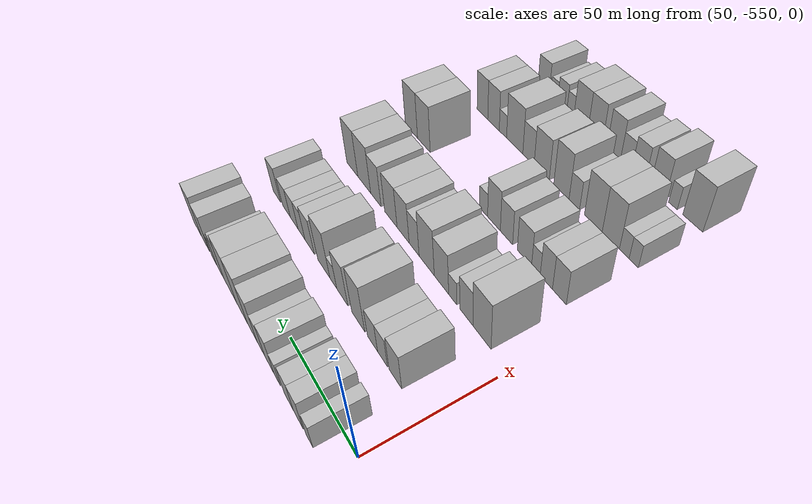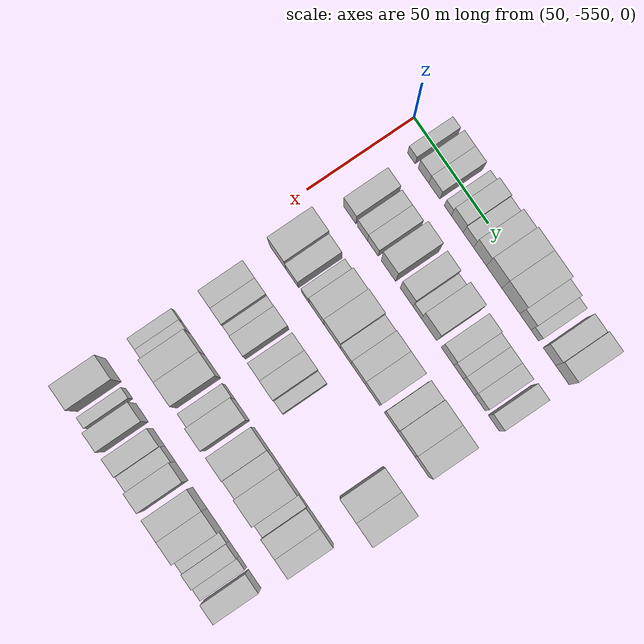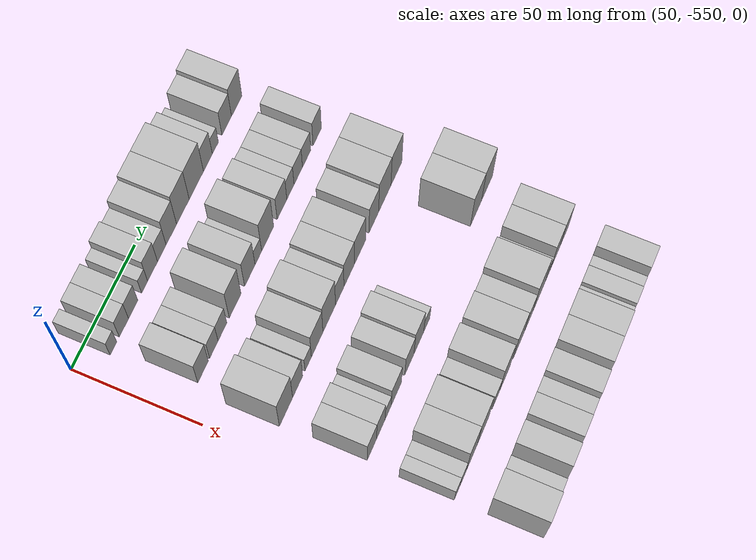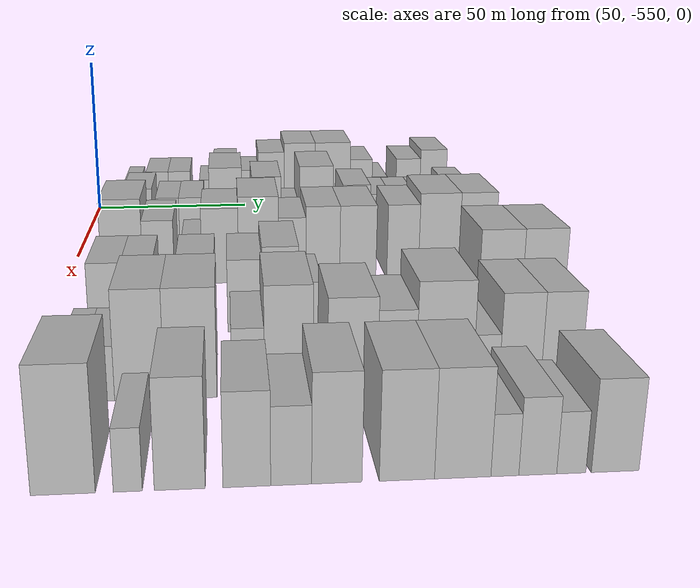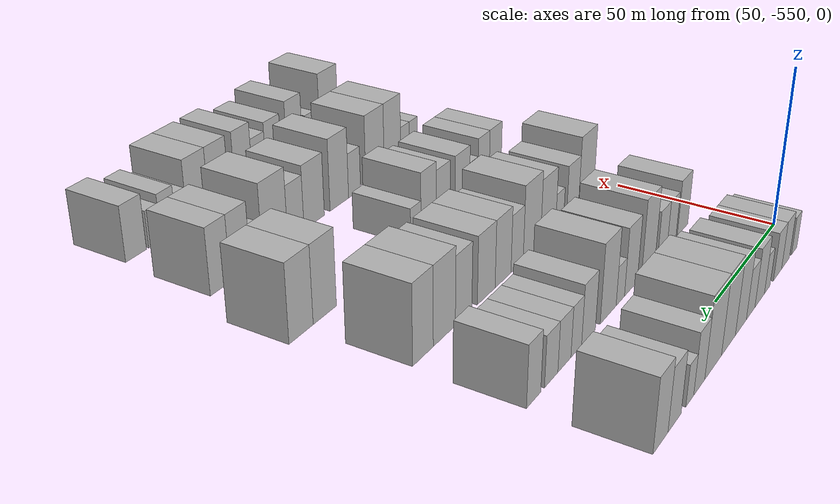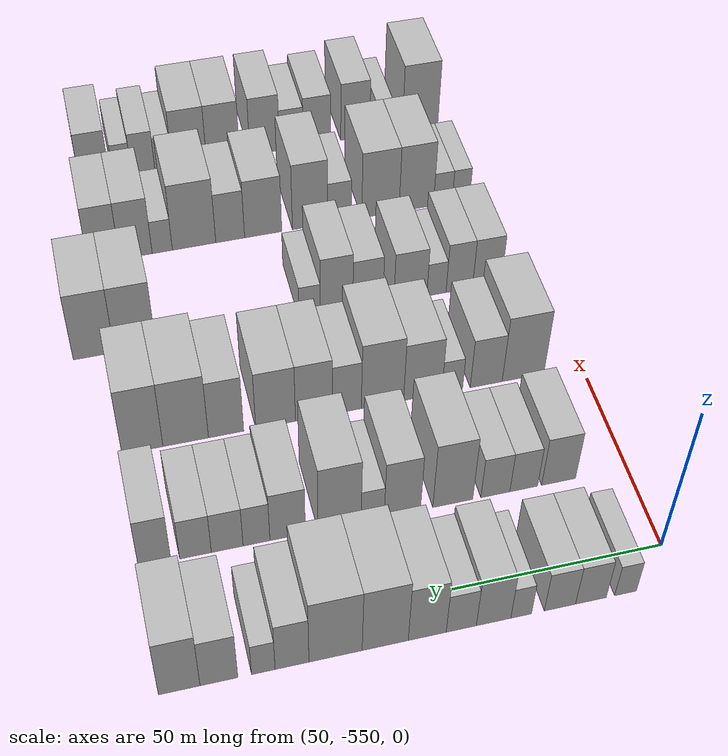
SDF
<sdf version="1.6">
 <world name="default">
  <model name="building_1">
   <static>1</static>
   <pose>50.0000 -537.4246 0 0.000000 0.000000 0.000000</pose>
   <link name="link">
    <pose>0 0 6.00 0 0 0</pose>
    <collision name="collision"><geometry><box><size>20.0000 5.1508 12.0000</size></box></geometry></collision>
    <visual name="visual">
     <cast_shadows>0</cast_shadows>
     <geometry><box><size>20.0000 5.1508 12.0000</size></box></geometry>
     <material>
      <script>
       <uri>model://HANNAS_wall/materials/scripts</uri>
       <uri>model://HANNAS_wall/materials/textures</uri>
       <name>vrc/HANNAS_wall</name>
      </script>
     </material>
    </visual>
   </link>
  </model>
  <model name="building_2">
   <static>1</static>
   <pose>50.0000 -529.2196 0 0.000000 0.000000 0.000000</pose>
   <link name="link">
    <pose>0 0 7.50 0 0 0</pose>
    <collision name="collision"><geometry><box><size>20.0000 7.2592 15.0000</size></box></geometry></collision>
    <visual name="visual">
     <cast_shadows>0</cast_shadows>
     <geometry><box><size>20.0000 7.2592 15.0000</size></box></geometry>
     <material>
      <script>
       <uri>model://HANNAS_wall/materials/scripts</uri>
       <uri>model://HANNAS_wall/materials/textures</uri>
       <name>vrc/HANNAS_wall</name>
      </script>
     </material>
    </visual>
   </link>
  </model>
  <model name="building_3">
   <static>1</static>
   <pose>50.0000 -521.9338 0 0.000000 0.000000 0.000000</pose>
   <link name="link">
    <pose>0 0 7.50 0 0 0</pose>
    <collision name="collision"><geometry><box><size>20.0000 7.3124 15.0000</size></box></geometry></collision>
    <visual name="visual">
     <cast_shadows>0</cast_shadows>
     <geometry><box><size>20.0000 7.3124 15.0000</size></box></geometry>
     <material>
      <script>
       <uri>model://HANNAS_wall/materials/scripts</uri>
       <uri>model://HANNAS_wall/materials/textures</uri>
       <name>vrc/HANNAS_wall</name>
      </script>
     </material>
    </visual>
   </link>
  </model>
  <model name="building_4">
   <static>1</static>
   <pose>50.0000 -512.8736 0 0.000000 0.000000 0.000000</pose>
   <link name="link">
    <pose>0 0 6.00 0 0 0</pose>
    <collision name="collision"><geometry><box><size>20.0000 4.8080 12.0000</size></box></geometry></collision>
    <visual name="visual">
     <cast_shadows>0</cast_shadows>
     <geometry><box><size>20.0000 4.8080 12.0000</size></box></geometry>
     <material>
      <script>
       <uri>model://HANNAS_wall/materials/scripts</uri>
       <uri>model://HANNAS_wall/materials/textures</uri>
       <name>vrc/HANNAS_wall</name>
      </script>
     </material>
    </visual>
   </link>
  </model>
  <model name="building_5">
   <static>1</static>
   <pose>50.0000 -506.4843 0 0.000000 0.000000 0.000000</pose>
   <link name="link">
    <pose>0 0 9.00 0 0 0</pose>
    <collision name="collision"><geometry><box><size>20.0000 7.9707 18.0000</size></box></geometry></collision>
    <visual name="visual">
     <cast_shadows>0</cast_shadows>
     <geometry><box><size>20.0000 7.9707 18.0000</size></box></geometry>
     <material>
      <script>
       <uri>model://HANNAS_wall/materials/scripts</uri>
       <uri>model://HANNAS_wall/materials/textures</uri>
       <name>vrc/HANNAS_wall</name>
      </script>
     </material>
    </visual>
   </link>
  </model>
  <model name="building_6">
   <static>1</static>
   <pose>50.0000 -499.0458 0 0.000000 0.000000 0.000000</pose>
   <link name="link">
    <pose>0 0 7.50 0 0 0</pose>
    <collision name="collision"><geometry><box><size>20.0000 6.9062 15.0000</size></box></geometry></collision>
    <visual name="visual">
     <cast_shadows>0</cast_shadows>
     <geometry><box><size>20.0000 6.9062 15.0000</size></box></geometry>
     <material>
      <script>
       <uri>model://HANNAS_wall/materials/scripts</uri>
       <uri>model://HANNAS_wall/materials/textures</uri>
       <name>vrc/HANNAS_wall</name>
      </script>
     </material>
    </visual>
   </link>
  </model>
  <model name="building_7">
   <static>1</static>
   <pose>50.0000 -491.2759 0 0.000000 0.000000 0.000000</pose>
   <link name="link">
    <pose>0 0 10.50 0 0 0</pose>
    <collision name="collision"><geometry><box><size>20.0000 8.6338 21.0000</size></box></geometry></collision>
    <visual name="visual">
     <cast_shadows>0</cast_shadows>
     <geometry><box><size>20.0000 8.6338 21.0000</size></box></geometry>
     <material>
      <script>
       <uri>model://HANNAS_wall/materials/scripts</uri>
       <uri>model://HANNAS_wall/materials/textures</uri>
       <name>vrc/HANNAS_wall</name>
      </script>
     </material>
    </visual>
   </link>
  </model>
  <model name="building_8">
   <static>1</static>
   <pose>50.0000 -481.7563 0 0.000000 0.000000 0.000000</pose>
   <link name="link">
    <pose>0 0 12.00 0 0 0</pose>
    <collision name="collision"><geometry><box><size>20.0000 10.4053 24.0000</size></box></geometry></collision>
    <visual name="visual">
     <cast_shadows>0</cast_shadows>
     <geometry><box><size>20.0000 10.4053 24.0000</size></box></geometry>
     <material>
      <script>
       <uri>model://HANNAS_wall/materials/scripts</uri>
       <uri>model://HANNAS_wall/materials/textures</uri>
       <name>vrc/HANNAS_wall</name>
      </script>
     </material>
    </visual>
   </link>
  </model>
  <model name="building_9">
   <static>1</static>
   <pose>50.0000 -470.6066 0 0.000000 0.000000 0.000000</pose>
   <link name="link">
    <pose>0 0 12.00 0 0 0</pose>
    <collision name="collision"><geometry><box><size>20.0000 11.8942 24.0000</size></box></geometry></collision>
    <visual name="visual">
     <cast_shadows>0</cast_shadows>
     <geometry><box><size>20.0000 11.8942 24.0000</size></box></geometry>
     <material>
      <script>
       <uri>model://HANNAS_wall/materials/scripts</uri>
       <uri>model://HANNAS_wall/materials/textures</uri>
       <name>vrc/HANNAS_wall</name>
      </script>
     </material>
    </visual>
   </link>
  </model>
  <model name="building_10">
   <static>1</static>
   <pose>50.0000 -460.9198 0 0.000000 0.000000 0.000000</pose>
   <link name="link">
    <pose>0 0 9.00 0 0 0</pose>
    <collision name="collision"><geometry><box><size>20.0000 7.4793 18.0000</size></box></geometry></collision>
    <visual name="visual">
     <cast_shadows>0</cast_shadows>
     <geometry><box><size>20.0000 7.4793 18.0000</size></box></geometry>
     <material>
      <script>
       <uri>model://HANNAS_wall/materials/scripts</uri>
       <uri>model://HANNAS_wall/materials/textures</uri>
       <name>vrc/HANNAS_wall</name>
      </script>
     </material>
    </visual>
   </link>
  </model>
  <model name="building_11">
   <static>1</static>
   <pose>50.0000 -454.5896 0 0.000000 0.000000 0.000000</pose>
   <link name="link">
    <pose>0 0 6.00 0 0 0</pose>
    <collision name="collision"><geometry><box><size>20.0000 5.1811 12.0000</size></box></geometry></collision>
    <visual name="visual">
     <cast_shadows>0</cast_shadows>
     <geometry><box><size>20.0000 5.1811 12.0000</size></box></geometry>
     <material>
      <script>
       <uri>model://HANNAS_wall/materials/scripts</uri>
       <uri>model://HANNAS_wall/materials/textures</uri>
       <name>vrc/HANNAS_wall</name>
      </script>
     </material>
    </visual>
   </link>
  </model>
  <model name="building_12">
   <static>1</static>
   <pose>50.0000 -444.8805 0 0.000000 0.000000 0.000000</pose>
   <link name="link">
    <pose>0 0 9.00 0 0 0</pose>
    <collision name="collision"><geometry><box><size>20.0000 8.2372 18.0000</size></box></geometry></collision>
    <visual name="visual">
     <cast_shadows>0</cast_shadows>
     <geometry><box><size>20.0000 8.2372 18.0000</size></box></geometry>
     <material>
      <script>
       <uri>model://HANNAS_wall/materials/scripts</uri>
       <uri>model://HANNAS_wall/materials/textures</uri>
       <name>vrc/HANNAS_wall</name>
      </script>
     </material>
    </visual>
   </link>
  </model>
  <model name="building_13">
   <static>1</static>
   <pose>50.0000 -436.2609 0 0.000000 0.000000 0.000000</pose>
   <link name="link">
    <pose>0 0 10.50 0 0 0</pose>
    <collision name="collision"><geometry><box><size>20.0000 9.0019 21.0000</size></box></geometry></collision>
    <visual name="visual">
     <cast_shadows>0</cast_shadows>
     <geometry><box><size>20.0000 9.0019 21.0000</size></box></geometry>
     <material>
      <script>
       <uri>model://HANNAS_wall/materials/scripts</uri>
       <uri>model://HANNAS_wall/materials/textures</uri>
       <name>vrc/HANNAS_wall</name>
      </script>
     </material>
    </visual>
   </link>
  </model>
  <model name="building_120">
   <static>1</static>
   <pose>82.0000 -532.7680 0 0.000000 0.000000 0.000000</pose>
   <link name="link">
    <pose>0 0 9.00 0 0 0</pose>
    <collision name="collision"><geometry><box><size>20.0000 8.4641 18.0000</size></box></geometry></collision>
    <visual name="visual">
     <cast_shadows>0</cast_shadows>
     <geometry><box><size>20.0000 8.4641 18.0000</size></box></geometry>
     <material>
      <script>
       <uri>model://HANNAS_wall/materials/scripts</uri>
       <uri>model://HANNAS_wall/materials/textures</uri>
       <name>vrc/HANNAS_wall</name>
      </script>
     </material>
    </visual>
   </link>
  </model>
  <model name="building_121">
   <static>1</static>
   <pose>82.0000 -524.0955 0 0.000000 0.000000 0.000000</pose>
   <link name="link">
    <pose>0 0 7.50 0 0 0</pose>
    <collision name="collision"><geometry><box><size>20.0000 6.8808 15.0000</size></box></geometry></collision>
    <visual name="visual">
     <cast_shadows>0</cast_shadows>
     <geometry><box><size>20.0000 6.8808 15.0000</size></box></geometry>
     <material>
      <script>
       <uri>model://HANNAS_wall/materials/scripts</uri>
       <uri>model://HANNAS_wall/materials/textures</uri>
       <name>vrc/HANNAS_wall</name>
      </script>
     </material>
    </visual>
   </link>
  </model>
  <model name="building_122">
   <static>1</static>
   <pose>82.0000 -517.0714 0 0.000000 0.000000 0.000000</pose>
   <link name="link">
    <pose>0 0 7.50 0 0 0</pose>
    <collision name="collision"><geometry><box><size>20.0000 7.1675 15.0000</size></box></geometry></collision>
    <visual name="visual">
     <cast_shadows>0</cast_shadows>
     <geometry><box><size>20.0000 7.1675 15.0000</size></box></geometry>
     <material>
      <script>
       <uri>model://HANNAS_wall/materials/scripts</uri>
       <uri>model://HANNAS_wall/materials/textures</uri>
       <name>vrc/HANNAS_wall</name>
      </script>
     </material>
    </visual>
   </link>
  </model>
  <model name="building_123">
   <static>1</static>
   <pose>82.0000 -506.6063 0 0.000000 0.000000 0.000000</pose>
   <link name="link">
    <pose>0 0 12.00 0 0 0</pose>
    <collision name="collision"><geometry><box><size>20.0000 9.7627 24.0000</size></box></geometry></collision>
    <visual name="visual">
     <cast_shadows>0</cast_shadows>
     <geometry><box><size>20.0000 9.7627 24.0000</size></box></geometry>
     <material>
      <script>
       <uri>model://HANNAS_wall/materials/scripts</uri>
       <uri>model://HANNAS_wall/materials/textures</uri>
       <name>vrc/HANNAS_wall</name>
      </script>
     </material>
    </visual>
   </link>
  </model>
  <model name="building_124">
   <static>1</static>
   <pose>82.0000 -494.3388 0 0.000000 0.000000 0.000000</pose>
   <link name="link">
    <pose>0 0 10.50 0 0 0</pose>
    <collision name="collision"><geometry><box><size>20.0000 8.7723 21.0000</size></box></geometry></collision>
    <visual name="visual">
     <cast_shadows>0</cast_shadows>
     <geometry><box><size>20.0000 8.7723 21.0000</size></box></geometry>
     <material>
      <script>
       <uri>model://HANNAS_wall/materials/scripts</uri>
       <uri>model://HANNAS_wall/materials/textures</uri>
       <name>vrc/HANNAS_wall</name>
      </script>
     </material>
    </visual>
   </link>
  </model>
  <model name="building_125">
   <static>1</static>
   <pose>82.0000 -487.1662 0 0.000000 0.000000 0.000000</pose>
   <link name="link">
    <pose>0 0 6.00 0 0 0</pose>
    <collision name="collision"><geometry><box><size>20.0000 5.5731 12.0000</size></box></geometry></collision>
    <visual name="visual">
     <cast_shadows>0</cast_shadows>
     <geometry><box><size>20.0000 5.5731 12.0000</size></box></geometry>
     <material>
      <script>
       <uri>model://HANNAS_wall/materials/scripts</uri>
       <uri>model://HANNAS_wall/materials/textures</uri>
       <name>vrc/HANNAS_wall</name>
      </script>
     </material>
    </visual>
   </link>
  </model>
  <model name="building_126">
   <static>1</static>
   <pose>82.0000 -479.2567 0 0.000000 0.000000 0.000000</pose>
   <link name="link">
    <pose>0 0 12.00 0 0 0</pose>
    <collision name="collision"><geometry><box><size>20.0000 10.2459 24.0000</size></box></geometry></collision>
    <visual name="visual">
     <cast_shadows>0</cast_shadows>
     <geometry><box><size>20.0000 10.2459 24.0000</size></box></geometry>
     <material>
      <script>
       <uri>model://HANNAS_wall/materials/scripts</uri>
       <uri>model://HANNAS_wall/materials/textures</uri>
       <name>vrc/HANNAS_wall</name>
      </script>
     </material>
    </visual>
   </link>
  </model>
  <model name="building_127">
   <static>1</static>
   <pose>82.0000 -466.9516 0 0.000000 0.000000 0.000000</pose>
   <link name="link">
    <pose>0 0 9.00 0 0 0</pose>
    <collision name="collision"><geometry><box><size>20.0000 8.3643 18.0000</size></box></geometry></collision>
    <visual name="visual">
     <cast_shadows>0</cast_shadows>
     <geometry><box><size>20.0000 8.3643 18.0000</size></box></geometry>
     <material>
      <script>
       <uri>model://HANNAS_wall/materials/scripts</uri>
       <uri>model://HANNAS_wall/materials/textures</uri>
       <name>vrc/HANNAS_wall</name>
      </script>
     </material>
    </visual>
   </link>
  </model>
  <model name="building_128">
   <static>1</static>
   <pose>82.0000 -459.6351 0 0.000000 0.000000 0.000000</pose>
   <link name="link">
    <pose>0 0 7.50 0 0 0</pose>
    <collision name="collision"><geometry><box><size>20.0000 6.2687 15.0000</size></box></geometry></collision>
    <visual name="visual">
     <cast_shadows>0</cast_shadows>
     <geometry><box><size>20.0000 6.2687 15.0000</size></box></geometry>
     <material>
      <script>
       <uri>model://HANNAS_wall/materials/scripts</uri>
       <uri>model://HANNAS_wall/materials/textures</uri>
       <name>vrc/HANNAS_wall</name>
      </script>
     </material>
    </visual>
   </link>
  </model>
  <model name="building_129">
   <static>1</static>
   <pose>82.0000 -452.7961 0 0.000000 0.000000 0.000000</pose>
   <link name="link">
    <pose>0 0 7.50 0 0 0</pose>
    <collision name="collision"><geometry><box><size>20.0000 7.4093 15.0000</size></box></geometry></collision>
    <visual name="visual">
     <cast_shadows>0</cast_shadows>
     <geometry><box><size>20.0000 7.4093 15.0000</size></box></geometry>
     <material>
      <script>
       <uri>model://HANNAS_wall/materials/scripts</uri>
       <uri>model://HANNAS_wall/materials/textures</uri>
       <name>vrc/HANNAS_wall</name>
      </script>
     </material>
    </visual>
   </link>
  </model>
  <model name="building_130">
   <static>1</static>
   <pose>82.0000 -445.4182 0 0.000000 0.000000 0.000000</pose>
   <link name="link">
    <pose>0 0 7.50 0 0 0</pose>
    <collision name="collision"><geometry><box><size>20.0000 7.3465 15.0000</size></box></geometry></collision>
    <visual name="visual">
     <cast_shadows>0</cast_shadows>
     <geometry><box><size>20.0000 7.3465 15.0000</size></box></geometry>
     <material>
      <script>
       <uri>model://HANNAS_wall/materials/scripts</uri>
       <uri>model://HANNAS_wall/materials/textures</uri>
       <name>vrc/HANNAS_wall</name>
      </script>
     </material>
    </visual>
   </link>
  </model>
  <model name="building_131">
   <static>1</static>
   <pose>82.0000 -436.0013 0 0.000000 0.000000 0.000000</pose>
   <link name="link">
    <pose>0 0 9.00 0 0 0</pose>
    <collision name="collision"><geometry><box><size>20.0000 7.4872 18.0000</size></box></geometry></collision>
    <visual name="visual">
     <cast_shadows>0</cast_shadows>
     <geometry><box><size>20.0000 7.4872 18.0000</size></box></geometry>
     <material>
      <script>
       <uri>model://HANNAS_wall/materials/scripts</uri>
       <uri>model://HANNAS_wall/materials/textures</uri>
       <name>vrc/HANNAS_wall</name>
      </script>
     </material>
    </visual>
   </link>
  </model>
  <model name="building_237">
   <static>1</static>
   <pose>114.0000 -534.5068 0 0.000000 0.000000 0.000000</pose>
   <link name="link">
    <pose>0 0 12.00 0 0 0</pose>
    <collision name="collision"><geometry><box><size>20.0000 10.9864 24.0000</size></box></geometry></collision>
    <visual name="visual">
     <cast_shadows>0</cast_shadows>
     <geometry><box><size>20.0000 10.9864 24.0000</size></box></geometry>
     <material>
      <script>
       <uri>model://HANNAS_wall/materials/scripts</uri>
       <uri>model://HANNAS_wall/materials/textures</uri>
       <name>vrc/HANNAS_wall</name>
      </script>
     </material>
    </visual>
   </link>
  </model>
  <model name="building_238">
   <static>1</static>
   <pose>114.0000 -524.8263 0 0.000000 0.000000 0.000000</pose>
   <link name="link">
    <pose>0 0 9.00 0 0 0</pose>
    <collision name="collision"><geometry><box><size>20.0000 8.3745 18.0000</size></box></geometry></collision>
    <visual name="visual">
     <cast_shadows>0</cast_shadows>
     <geometry><box><size>20.0000 8.3745 18.0000</size></box></geometry>
     <material>
      <script>
       <uri>model://HANNAS_wall/materials/scripts</uri>
       <uri>model://HANNAS_wall/materials/textures</uri>
       <name>vrc/HANNAS_wall</name>
      </script>
     </material>
    </visual>
   </link>
  </model>
  <model name="building_239">
   <static>1</static>
   <pose>114.0000 -515.9416 0 0.000000 0.000000 0.000000</pose>
   <link name="link">
    <pose>0 0 6.00 0 0 0</pose>
    <collision name="collision"><geometry><box><size>20.0000 5.3950 12.0000</size></box></geometry></collision>
    <visual name="visual">
     <cast_shadows>0</cast_shadows>
     <geometry><box><size>20.0000 5.3950 12.0000</size></box></geometry>
     <material>
      <script>
       <uri>model://HANNAS_wall/materials/scripts</uri>
       <uri>model://HANNAS_wall/materials/textures</uri>
       <name>vrc/HANNAS_wall</name>
      </script>
     </material>
    </visual>
   </link>
  </model>
  <model name="building_240">
   <static>1</static>
   <pose>114.0000 -508.3169 0 0.000000 0.000000 0.000000</pose>
   <link name="link">
    <pose>0 0 10.50 0 0 0</pose>
    <collision name="collision"><geometry><box><size>20.0000 9.8543 21.0000</size></box></geometry></collision>
    <visual name="visual">
     <cast_shadows>0</cast_shadows>
     <geometry><box><size>20.0000 9.8543 21.0000</size></box></geometry>
     <material>
      <script>
       <uri>model://HANNAS_wall/materials/scripts</uri>
       <uri>model://HANNAS_wall/materials/textures</uri>
       <name>vrc/HANNAS_wall</name>
      </script>
     </material>
    </visual>
   </link>
  </model>
  <model name="building_241">
   <static>1</static>
   <pose>114.0000 -497.9650 0 0.000000 0.000000 0.000000</pose>
   <link name="link">
    <pose>0 0 12.00 0 0 0</pose>
    <collision name="collision"><geometry><box><size>20.0000 10.8495 24.0000</size></box></geometry></collision>
    <visual name="visual">
     <cast_shadows>0</cast_shadows>
     <geometry><box><size>20.0000 10.8495 24.0000</size></box></geometry>
     <material>
      <script>
       <uri>model://HANNAS_wall/materials/scripts</uri>
       <uri>model://HANNAS_wall/materials/textures</uri>
       <name>vrc/HANNAS_wall</name>
      </script>
     </material>
    </visual>
   </link>
  </model>
  <model name="building_242">
   <static>1</static>
   <pose>114.0000 -488.8527 0 0.000000 0.000000 0.000000</pose>
   <link name="link">
    <pose>0 0 9.00 0 0 0</pose>
    <collision name="collision"><geometry><box><size>20.0000 7.3752 18.0000</size></box></geometry></collision>
    <visual name="visual">
     <cast_shadows>0</cast_shadows>
     <geometry><box><size>20.0000 7.3752 18.0000</size></box></geometry>
     <material>
      <script>
       <uri>model://HANNAS_wall/materials/scripts</uri>
       <uri>model://HANNAS_wall/materials/textures</uri>
       <name>vrc/HANNAS_wall</name>
      </script>
     </material>
    </visual>
   </link>
  </model>
  <model name="building_243">
   <static>1</static>
   <pose>114.0000 -480.5340 0 0.000000 0.000000 0.000000</pose>
   <link name="link">
    <pose>0 0 10.50 0 0 0</pose>
    <collision name="collision"><geometry><box><size>20.0000 9.2622 21.0000</size></box></geometry></collision>
    <visual name="visual">
     <cast_shadows>0</cast_shadows>
     <geometry><box><size>20.0000 9.2622 21.0000</size></box></geometry>
     <material>
      <script>
       <uri>model://HANNAS_wall/materials/scripts</uri>
       <uri>model://HANNAS_wall/materials/textures</uri>
       <name>vrc/HANNAS_wall</name>
      </script>
     </material>
    </visual>
   </link>
  </model>
  <model name="building_244">
   <static>1</static>
   <pose>114.0000 -470.9319 0 0.000000 0.000000 0.000000</pose>
   <link name="link">
    <pose>0 0 10.50 0 0 0</pose>
    <collision name="collision"><geometry><box><size>20.0000 9.9419 21.0000</size></box></geometry></collision>
    <visual name="visual">
     <cast_shadows>0</cast_shadows>
     <geometry><box><size>20.0000 9.9419 21.0000</size></box></geometry>
     <material>
      <script>
       <uri>model://HANNAS_wall/materials/scripts</uri>
       <uri>model://HANNAS_wall/materials/textures</uri>
       <name>vrc/HANNAS_wall</name>
      </script>
     </material>
    </visual>
   </link>
  </model>
  <model name="building_245">
   <static>1</static>
   <pose>114.0000 -458.5997 0 0.000000 0.000000 0.000000</pose>
   <link name="link">
    <pose>0 0 10.50 0 0 0</pose>
    <collision name="collision"><geometry><box><size>20.0000 8.7226 21.0000</size></box></geometry></collision>
    <visual name="visual">
     <cast_shadows>0</cast_shadows>
     <geometry><box><size>20.0000 8.7226 21.0000</size></box></geometry>
     <material>
      <script>
       <uri>model://HANNAS_wall/materials/scripts</uri>
       <uri>model://HANNAS_wall/materials/textures</uri>
       <name>vrc/HANNAS_wall</name>
      </script>
     </material>
    </visual>
   </link>
  </model>
  <model name="building_246">
   <static>1</static>
   <pose>114.0000 -448.6491 0 0.000000 0.000000 0.000000</pose>
   <link name="link">
    <pose>0 0 12.00 0 0 0</pose>
    <collision name="collision"><geometry><box><size>20.0000 11.1785 24.0000</size></box></geometry></collision>
    <visual name="visual">
     <cast_shadows>0</cast_shadows>
     <geometry><box><size>20.0000 11.1785 24.0000</size></box></geometry>
     <material>
      <script>
       <uri>model://HANNAS_wall/materials/scripts</uri>
       <uri>model://HANNAS_wall/materials/textures</uri>
       <name>vrc/HANNAS_wall</name>
      </script>
     </material>
    </visual>
   </link>
  </model>
  <model name="building_247">
   <static>1</static>
   <pose>114.0000 -438.0584 0 0.000000 0.000000 0.000000</pose>
   <link name="link">
    <pose>0 0 12.00 0 0 0</pose>
    <collision name="collision"><geometry><box><size>20.0000 10.0029 24.0000</size></box></geometry></collision>
    <visual name="visual">
     <cast_shadows>0</cast_shadows>
     <geometry><box><size>20.0000 10.0029 24.0000</size></box></geometry>
     <material>
      <script>
       <uri>model://HANNAS_wall/materials/scripts</uri>
       <uri>model://HANNAS_wall/materials/textures</uri>
       <name>vrc/HANNAS_wall</name>
      </script>
     </material>
    </visual>
   </link>
  </model>
  <model name="building_345">
   <static>1</static>
   <pose>146.0000 -535.0195 0 0.000000 0.000000 0.000000</pose>
   <link name="link">
    <pose>0 0 9.00 0 0 0</pose>
    <collision name="collision"><geometry><box><size>20.0000 7.9610 18.0000</size></box></geometry></collision>
    <visual name="visual">
     <cast_shadows>0</cast_shadows>
     <geometry><box><size>20.0000 7.9610 18.0000</size></box></geometry>
     <material>
      <script>
       <uri>model://HANNAS_wall/materials/scripts</uri>
       <uri>model://HANNAS_wall/materials/textures</uri>
       <name>vrc/HANNAS_wall</name>
      </script>
     </material>
    </visual>
   </link>
  </model>
  <model name="building_346">
   <static>1</static>
   <pose>146.0000 -527.3900 0 0.000000 0.000000 0.000000</pose>
   <link name="link">
    <pose>0 0 9.00 0 0 0</pose>
    <collision name="collision"><geometry><box><size>20.0000 7.2980 18.0000</size></box></geometry></collision>
    <visual name="visual">
     <cast_shadows>0</cast_shadows>
     <geometry><box><size>20.0000 7.2980 18.0000</size></box></geometry>
     <material>
      <script>
       <uri>model://HANNAS_wall/materials/scripts</uri>
       <uri>model://HANNAS_wall/materials/textures</uri>
       <name>vrc/HANNAS_wall</name>
      </script>
     </material>
    </visual>
   </link>
  </model>
  <model name="building_347">
   <static>1</static>
   <pose>146.0000 -521.1068 0 0.000000 0.000000 0.000000</pose>
   <link name="link">
    <pose>0 0 6.00 0 0 0</pose>
    <collision name="collision"><geometry><box><size>20.0000 5.2684 12.0000</size></box></geometry></collision>
    <visual name="visual">
     <cast_shadows>0</cast_shadows>
     <geometry><box><size>20.0000 5.2684 12.0000</size></box></geometry>
     <material>
      <script>
       <uri>model://HANNAS_wall/materials/scripts</uri>
       <uri>model://HANNAS_wall/materials/textures</uri>
       <name>vrc/HANNAS_wall</name>
      </script>
     </material>
    </visual>
   </link>
  </model>
  <model name="building_348">
   <static>1</static>
   <pose>146.0000 -513.9784 0 0.000000 0.000000 0.000000</pose>
   <link name="link">
    <pose>0 0 9.00 0 0 0</pose>
    <collision name="collision"><geometry><box><size>20.0000 8.9884 18.0000</size></box></geometry></collision>
    <visual name="visual">
     <cast_shadows>0</cast_shadows>
     <geometry><box><size>20.0000 8.9884 18.0000</size></box></geometry>
     <material>
      <script>
       <uri>model://HANNAS_wall/materials/scripts</uri>
       <uri>model://HANNAS_wall/materials/textures</uri>
       <name>vrc/HANNAS_wall</name>
      </script>
     </material>
    </visual>
   </link>
  </model>
  <model name="building_349">
   <static>1</static>
   <pose>146.0000 -502.4098 0 0.000000 0.000000 0.000000</pose>
   <link name="link">
    <pose>0 0 9.00 0 0 0</pose>
    <collision name="collision"><geometry><box><size>20.0000 8.1488 18.0000</size></box></geometry></collision>
    <visual name="visual">
     <cast_shadows>0</cast_shadows>
     <geometry><box><size>20.0000 8.1488 18.0000</size></box></geometry>
     <material>
      <script>
       <uri>model://HANNAS_wall/materials/scripts</uri>
       <uri>model://HANNAS_wall/materials/textures</uri>
       <name>vrc/HANNAS_wall</name>
      </script>
     </material>
    </visual>
   </link>
  </model>
  <model name="building_350">
   <static>1</static>
   <pose>146.0000 -493.9927 0 0.000000 0.000000 0.000000</pose>
   <link name="link">
    <pose>0 0 10.50 0 0 0</pose>
    <collision name="collision"><geometry><box><size>20.0000 8.6854 21.0000</size></box></geometry></collision>
    <visual name="visual">
     <cast_shadows>0</cast_shadows>
     <geometry><box><size>20.0000 8.6854 21.0000</size></box></geometry>
     <material>
      <script>
       <uri>model://HANNAS_wall/materials/scripts</uri>
       <uri>model://HANNAS_wall/materials/textures</uri>
       <name>vrc/HANNAS_wall</name>
      </script>
     </material>
    </visual>
   </link>
  </model>
  <model name="building_351">
   <static>1</static>
   <pose>146.0000 -486.8085 0 0.000000 0.000000 0.000000</pose>
   <link name="link">
    <pose>0 0 6.00 0 0 0</pose>
    <collision name="collision"><geometry><box><size>20.0000 5.6830 12.0000</size></box></geometry></collision>
    <visual name="visual">
     <cast_shadows>0</cast_shadows>
     <geometry><box><size>20.0000 5.6830 12.0000</size></box></geometry>
     <material>
      <script>
       <uri>model://HANNAS_wall/materials/scripts</uri>
       <uri>model://HANNAS_wall/materials/textures</uri>
       <name>vrc/HANNAS_wall</name>
      </script>
     </material>
    </visual>
   </link>
  </model>
  <model name="building_352">
   <static>1</static>
   <pose>146.0000 -441.0536 0 0.000000 0.000000 0.000000</pose>
   <link name="link">
    <pose>0 0 12.00 0 0 0</pose>
    <collision name="collision"><geometry><box><size>20.0000 10.6090 24.0000</size></box></geometry></collision>
    <visual name="visual">
     <cast_shadows>0</cast_shadows>
     <geometry><box><size>20.0000 10.6090 24.0000</size></box></geometry>
     <material>
      <script>
       <uri>model://HANNAS_wall/materials/scripts</uri>
       <uri>model://HANNAS_wall/materials/textures</uri>
       <name>vrc/HANNAS_wall</name>
      </script>
     </material>
    </visual>
   </link>
  </model>
  <model name="building_353">
   <static>1</static>
   <pose>146.0000 -430.4767 0 0.000000 0.000000 0.000000</pose>
   <link name="link">
    <pose>0 0 12.00 0 0 0</pose>
    <collision name="collision"><geometry><box><size>20.0000 10.5447 24.0000</size></box></geometry></collision>
    <visual name="visual">
     <cast_shadows>0</cast_shadows>
     <geometry><box><size>20.0000 10.5447 24.0000</size></box></geometry>
     <material>
      <script>
       <uri>model://HANNAS_wall/materials/scripts</uri>
       <uri>model://HANNAS_wall/materials/textures</uri>
       <name>vrc/HANNAS_wall</name>
      </script>
     </material>
    </visual>
   </link>
  </model>
  <model name="building_454">
   <static>1</static>
   <pose>178.0000 -537.4668 0 0.000000 0.000000 0.000000</pose>
   <link name="link">
    <pose>0 0 6.00 0 0 0</pose>
    <collision name="collision"><geometry><box><size>20.0000 5.0663 12.0000</size></box></geometry></collision>
    <visual name="visual">
     <cast_shadows>0</cast_shadows>
     <geometry><box><size>20.0000 5.0663 12.0000</size></box></geometry>
     <material>
      <script>
       <uri>model://HANNAS_wall/materials/scripts</uri>
       <uri>model://HANNAS_wall/materials/textures</uri>
       <name>vrc/HANNAS_wall</name>
      </script>
     </material>
    </visual>
   </link>
  </model>
  <model name="building_455">
   <static>1</static>
   <pose>178.0000 -532.2196 0 0.000000 0.000000 0.000000</pose>
   <link name="link">
    <pose>0 0 6.00 0 0 0</pose>
    <collision name="collision"><geometry><box><size>20.0000 5.4281 12.0000</size></box></geometry></collision>
    <visual name="visual">
     <cast_shadows>0</cast_shadows>
     <geometry><box><size>20.0000 5.4281 12.0000</size></box></geometry>
     <material>
      <script>
       <uri>model://HANNAS_wall/materials/scripts</uri>
       <uri>model://HANNAS_wall/materials/textures</uri>
       <name>vrc/HANNAS_wall</name>
      </script>
     </material>
    </visual>
   </link>
  </model>
  <model name="building_456">
   <static>1</static>
   <pose>178.0000 -524.5306 0 0.000000 0.000000 0.000000</pose>
   <link name="link">
    <pose>0 0 12.00 0 0 0</pose>
    <collision name="collision"><geometry><box><size>20.0000 9.9499 24.0000</size></box></geometry></collision>
    <visual name="visual">
     <cast_shadows>0</cast_shadows>
     <geometry><box><size>20.0000 9.9499 24.0000</size></box></geometry>
     <material>
      <script>
       <uri>model://HANNAS_wall/materials/scripts</uri>
       <uri>model://HANNAS_wall/materials/textures</uri>
       <name>vrc/HANNAS_wall</name>
      </script>
     </material>
    </visual>
   </link>
  </model>
  <model name="building_457">
   <static>1</static>
   <pose>178.0000 -514.2088 0 0.000000 0.000000 0.000000</pose>
   <link name="link">
    <pose>0 0 12.00 0 0 0</pose>
    <collision name="collision"><geometry><box><size>20.0000 10.6936 24.0000</size></box></geometry></collision>
    <visual name="visual">
     <cast_shadows>0</cast_shadows>
     <geometry><box><size>20.0000 10.6936 24.0000</size></box></geometry>
     <material>
      <script>
       <uri>model://HANNAS_wall/materials/scripts</uri>
       <uri>model://HANNAS_wall/materials/textures</uri>
       <name>vrc/HANNAS_wall</name>
      </script>
     </material>
    </visual>
   </link>
  </model>
  <model name="building_458">
   <static>1</static>
   <pose>178.0000 -502.5401 0 0.000000 0.000000 0.000000</pose>
   <link name="link">
    <pose>0 0 7.50 0 0 0</pose>
    <collision name="collision"><geometry><box><size>20.0000 6.6438 15.0000</size></box></geometry></collision>
    <visual name="visual">
     <cast_shadows>0</cast_shadows>
     <geometry><box><size>20.0000 6.6438 15.0000</size></box></geometry>
     <material>
      <script>
       <uri>model://HANNAS_wall/materials/scripts</uri>
       <uri>model://HANNAS_wall/materials/textures</uri>
       <name>vrc/HANNAS_wall</name>
      </script>
     </material>
    </visual>
   </link>
  </model>
  <model name="building_459">
   <static>1</static>
   <pose>178.0000 -494.2383 0 0.000000 0.000000 0.000000</pose>
   <link name="link">
    <pose>0 0 12.00 0 0 0</pose>
    <collision name="collision"><geometry><box><size>20.0000 9.9599 24.0000</size></box></geometry></collision>
    <visual name="visual">
     <cast_shadows>0</cast_shadows>
     <geometry><box><size>20.0000 9.9599 24.0000</size></box></geometry>
     <material>
      <script>
       <uri>model://HANNAS_wall/materials/scripts</uri>
       <uri>model://HANNAS_wall/materials/textures</uri>
       <name>vrc/HANNAS_wall</name>
      </script>
     </material>
    </visual>
   </link>
  </model>
  <model name="building_460">
   <static>1</static>
   <pose>178.0000 -481.0750 0 0.000000 0.000000 0.000000</pose>
   <link name="link">
    <pose>0 0 10.50 0 0 0</pose>
    <collision name="collision"><geometry><box><size>20.0000 10.3667 21.0000</size></box></geometry></collision>
    <visual name="visual">
     <cast_shadows>0</cast_shadows>
     <geometry><box><size>20.0000 10.3667 21.0000</size></box></geometry>
     <material>
      <script>
       <uri>model://HANNAS_wall/materials/scripts</uri>
       <uri>model://HANNAS_wall/materials/textures</uri>
       <name>vrc/HANNAS_wall</name>
      </script>
     </material>
    </visual>
   </link>
  </model>
  <model name="building_461">
   <static>1</static>
   <pose>178.0000 -471.8965 0 0.000000 0.000000 0.000000</pose>
   <link name="link">
    <pose>0 0 9.00 0 0 0</pose>
    <collision name="collision"><geometry><box><size>20.0000 7.9904 18.0000</size></box></geometry></collision>
    <visual name="visual">
     <cast_shadows>0</cast_shadows>
     <geometry><box><size>20.0000 7.9904 18.0000</size></box></geometry>
     <material>
      <script>
       <uri>model://HANNAS_wall/materials/scripts</uri>
       <uri>model://HANNAS_wall/materials/textures</uri>
       <name>vrc/HANNAS_wall</name>
      </script>
     </material>
    </visual>
   </link>
  </model>
  <model name="building_462">
   <static>1</static>
   <pose>178.0000 -461.9274 0 0.000000 0.000000 0.000000</pose>
   <link name="link">
    <pose>0 0 12.00 0 0 0</pose>
    <collision name="collision"><geometry><box><size>20.0000 11.9478 24.0000</size></box></geometry></collision>
    <visual name="visual">
     <cast_shadows>0</cast_shadows>
     <geometry><box><size>20.0000 11.9478 24.0000</size></box></geometry>
     <material>
      <script>
       <uri>model://HANNAS_wall/materials/scripts</uri>
       <uri>model://HANNAS_wall/materials/textures</uri>
       <name>vrc/HANNAS_wall</name>
      </script>
     </material>
    </visual>
   </link>
  </model>
  <model name="building_463">
   <static>1</static>
   <pose>178.0000 -453.1906 0 0.000000 0.000000 0.000000</pose>
   <link name="link">
    <pose>0 0 6.00 0 0 0</pose>
    <collision name="collision"><geometry><box><size>20.0000 5.5258 12.0000</size></box></geometry></collision>
    <visual name="visual">
     <cast_shadows>0</cast_shadows>
     <geometry><box><size>20.0000 5.5258 12.0000</size></box></geometry>
     <material>
      <script>
       <uri>model://HANNAS_wall/materials/scripts</uri>
       <uri>model://HANNAS_wall/materials/textures</uri>
       <name>vrc/HANNAS_wall</name>
      </script>
     </material>
    </visual>
   </link>
  </model>
  <model name="building_464">
   <static>1</static>
   <pose>178.0000 -445.9883 0 0.000000 0.000000 0.000000</pose>
   <link name="link">
    <pose>0 0 10.50 0 0 0</pose>
    <collision name="collision"><geometry><box><size>20.0000 8.8787 21.0000</size></box></geometry></collision>
    <visual name="visual">
     <cast_shadows>0</cast_shadows>
     <geometry><box><size>20.0000 8.8787 21.0000</size></box></geometry>
     <material>
      <script>
       <uri>model://HANNAS_wall/materials/scripts</uri>
       <uri>model://HANNAS_wall/materials/textures</uri>
       <name>vrc/HANNAS_wall</name>
      </script>
     </material>
    </visual>
   </link>
  </model>
  <model name="building_465">
   <static>1</static>
   <pose>178.0000 -437.2751 0 0.000000 0.000000 0.000000</pose>
   <link name="link">
    <pose>0 0 10.50 0 0 0</pose>
    <collision name="collision"><geometry><box><size>20.0000 8.5477 21.0000</size></box></geometry></collision>
    <visual name="visual">
     <cast_shadows>0</cast_shadows>
     <geometry><box><size>20.0000 8.5477 21.0000</size></box></geometry>
     <material>
      <script>
       <uri>model://HANNAS_wall/materials/scripts</uri>
       <uri>model://HANNAS_wall/materials/textures</uri>
       <name>vrc/HANNAS_wall</name>
      </script>
     </material>
    </visual>
   </link>
  </model>
  <model name="building_574">
   <static>1</static>
   <pose>210.0000 -534.5940 0 0.000000 0.000000 0.000000</pose>
   <link name="link">
    <pose>0 0 12.00 0 0 0</pose>
    <collision name="collision"><geometry><box><size>20.0000 10.8120 24.0000</size></box></geometry></collision>
    <visual name="visual">
     <cast_shadows>0</cast_shadows>
     <geometry><box><size>20.0000 10.8120 24.0000</size></box></geometry>
     <material>
      <script>
       <uri>model://HANNAS_wall/materials/scripts</uri>
       <uri>model://HANNAS_wall/materials/textures</uri>
       <name>vrc/HANNAS_wall</name>
      </script>
     </material>
    </visual>
   </link>
  </model>
  <model name="building_575">
   <static>1</static>
   <pose>210.0000 -523.7458 0 0.000000 0.000000 0.000000</pose>
   <link name="link">
    <pose>0 0 6.00 0 0 0</pose>
    <collision name="collision"><geometry><box><size>20.0000 4.8844 12.0000</size></box></geometry></collision>
    <visual name="visual">
     <cast_shadows>0</cast_shadows>
     <geometry><box><size>20.0000 4.8844 12.0000</size></box></geometry>
     <material>
      <script>
       <uri>model://HANNAS_wall/materials/scripts</uri>
       <uri>model://HANNAS_wall/materials/textures</uri>
       <name>vrc/HANNAS_wall</name>
      </script>
     </material>
    </visual>
   </link>
  </model>
  <model name="building_576">
   <static>1</static>
   <pose>210.0000 -514.9911 0 0.000000 0.000000 0.000000</pose>
   <link name="link">
    <pose>0 0 10.50 0 0 0</pose>
    <collision name="collision"><geometry><box><size>20.0000 8.6251 21.0000</size></box></geometry></collision>
    <visual name="visual">
     <cast_shadows>0</cast_shadows>
     <geometry><box><size>20.0000 8.6251 21.0000</size></box></geometry>
     <material>
      <script>
       <uri>model://HANNAS_wall/materials/scripts</uri>
       <uri>model://HANNAS_wall/materials/textures</uri>
       <name>vrc/HANNAS_wall</name>
      </script>
     </material>
    </visual>
   </link>
  </model>
  <model name="building_577">
   <static>1</static>
   <pose>210.0000 -503.5986 0 0.000000 0.000000 0.000000</pose>
   <link name="link">
    <pose>0 0 9.00 0 0 0</pose>
    <collision name="collision"><geometry><box><size>20.0000 8.1599 18.0000</size></box></geometry></collision>
    <visual name="visual">
     <cast_shadows>0</cast_shadows>
     <geometry><box><size>20.0000 8.1599 18.0000</size></box></geometry>
     <material>
      <script>
       <uri>model://HANNAS_wall/materials/scripts</uri>
       <uri>model://HANNAS_wall/materials/textures</uri>
       <name>vrc/HANNAS_wall</name>
      </script>
     </material>
    </visual>
   </link>
  </model>
  <model name="building_578">
   <static>1</static>
   <pose>210.0000 -496.0052 0 0.000000 0.000000 0.000000</pose>
   <link name="link">
    <pose>0 0 7.50 0 0 0</pose>
    <collision name="collision"><geometry><box><size>20.0000 7.0269 15.0000</size></box></geometry></collision>
    <visual name="visual">
     <cast_shadows>0</cast_shadows>
     <geometry><box><size>20.0000 7.0269 15.0000</size></box></geometry>
     <material>
      <script>
       <uri>model://HANNAS_wall/materials/scripts</uri>
       <uri>model://HANNAS_wall/materials/textures</uri>
       <name>vrc/HANNAS_wall</name>
      </script>
     </material>
    </visual>
   </link>
  </model>
  <model name="building_579">
   <static>1</static>
   <pose>210.0000 -488.1323 0 0.000000 0.000000 0.000000</pose>
   <link name="link">
    <pose>0 0 10.50 0 0 0</pose>
    <collision name="collision"><geometry><box><size>20.0000 8.7189 21.0000</size></box></geometry></collision>
    <visual name="visual">
     <cast_shadows>0</cast_shadows>
     <geometry><box><size>20.0000 8.7189 21.0000</size></box></geometry>
     <material>
      <script>
       <uri>model://HANNAS_wall/materials/scripts</uri>
       <uri>model://HANNAS_wall/materials/textures</uri>
       <name>vrc/HANNAS_wall</name>
      </script>
     </material>
    </visual>
   </link>
  </model>
  <model name="building_580">
   <static>1</static>
   <pose>210.0000 -475.9482 0 0.000000 0.000000 0.000000</pose>
   <link name="link">
    <pose>0 0 10.50 0 0 0</pose>
    <collision name="collision"><geometry><box><size>20.0000 9.6494 21.0000</size></box></geometry></collision>
    <visual name="visual">
     <cast_shadows>0</cast_shadows>
     <geometry><box><size>20.0000 9.6494 21.0000</size></box></geometry>
     <material>
      <script>
       <uri>model://HANNAS_wall/materials/scripts</uri>
       <uri>model://HANNAS_wall/materials/textures</uri>
       <name>vrc/HANNAS_wall</name>
      </script>
     </material>
    </visual>
   </link>
  </model>
  <model name="building_581">
   <static>1</static>
   <pose>210.0000 -466.1457 0 0.000000 0.000000 0.000000</pose>
   <link name="link">
    <pose>0 0 10.50 0 0 0</pose>
    <collision name="collision"><geometry><box><size>20.0000 9.9556 21.0000</size></box></geometry></collision>
    <visual name="visual">
     <cast_shadows>0</cast_shadows>
     <geometry><box><size>20.0000 9.9556 21.0000</size></box></geometry>
     <material>
      <script>
       <uri>model://HANNAS_wall/materials/scripts</uri>
       <uri>model://HANNAS_wall/materials/textures</uri>
       <name>vrc/HANNAS_wall</name>
      </script>
     </material>
    </visual>
   </link>
  </model>
  <model name="building_582">
   <static>1</static>
   <pose>210.0000 -458.6944 0 0.000000 0.000000 0.000000</pose>
   <link name="link">
    <pose>0 0 6.00 0 0 0</pose>
    <collision name="collision"><geometry><box><size>20.0000 4.9470 12.0000</size></box></geometry></collision>
    <visual name="visual">
     <cast_shadows>0</cast_shadows>
     <geometry><box><size>20.0000 4.9470 12.0000</size></box></geometry>
     <material>
      <script>
       <uri>model://HANNAS_wall/materials/scripts</uri>
       <uri>model://HANNAS_wall/materials/textures</uri>
       <name>vrc/HANNAS_wall</name>
      </script>
     </material>
    </visual>
   </link>
  </model>
  <model name="building_583">
   <static>1</static>
   <pose>210.0000 -452.8400 0 0.000000 0.000000 0.000000</pose>
   <link name="link">
    <pose>0 0 7.50 0 0 0</pose>
    <collision name="collision"><geometry><box><size>20.0000 6.7619 15.0000</size></box></geometry></collision>
    <visual name="visual">
     <cast_shadows>0</cast_shadows>
     <geometry><box><size>20.0000 6.7619 15.0000</size></box></geometry>
     <material>
      <script>
       <uri>model://HANNAS_wall/materials/scripts</uri>
       <uri>model://HANNAS_wall/materials/textures</uri>
       <name>vrc/HANNAS_wall</name>
      </script>
     </material>
    </visual>
   </link>
  </model>
  <model name="building_584">
   <static>1</static>
   <pose>210.0000 -446.8482 0 0.000000 0.000000 0.000000</pose>
   <link name="link">
    <pose>0 0 6.00 0 0 0</pose>
    <collision name="collision"><geometry><box><size>20.0000 5.2217 12.0000</size></box></geometry></collision>
    <visual name="visual">
     <cast_shadows>0</cast_shadows>
     <geometry><box><size>20.0000 5.2217 12.0000</size></box></geometry>
     <material>
      <script>
       <uri>model://HANNAS_wall/materials/scripts</uri>
       <uri>model://HANNAS_wall/materials/textures</uri>
       <name>vrc/HANNAS_wall</name>
      </script>
     </material>
    </visual>
   </link>
  </model>
  <model name="building_585">
   <static>1</static>
   <pose>210.0000 -438.9443 0 0.000000 0.000000 0.000000</pose>
   <link name="link">
    <pose>0 0 9.00 0 0 0</pose>
    <collision name="collision"><geometry><box><size>20.0000 8.5859 18.0000</size></box></geometry></collision>
    <visual name="visual">
     <cast_shadows>0</cast_shadows>
     <geometry><box><size>20.0000 8.5859 18.0000</size></box></geometry>
     <material>
      <script>
       <uri>model://HANNAS_wall/materials/scripts</uri>
       <uri>model://HANNAS_wall/materials/textures</uri>
       <name>vrc/HANNAS_wall</name>
      </script>
     </material>
    </visual>
   </link>
  </model>
 </world>
</sdf>
